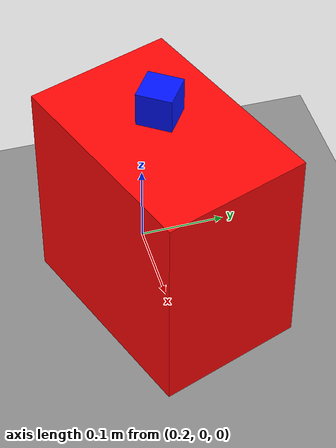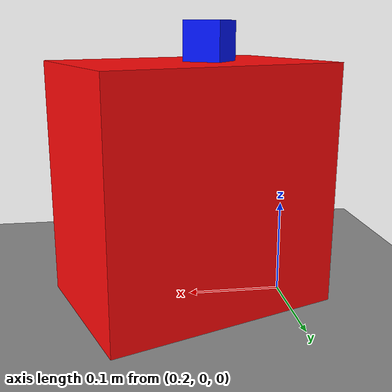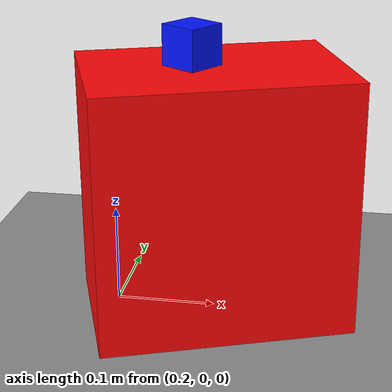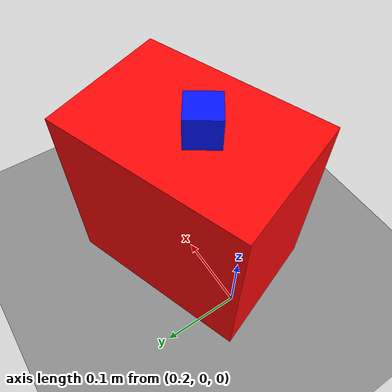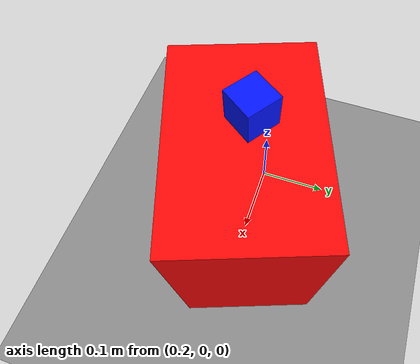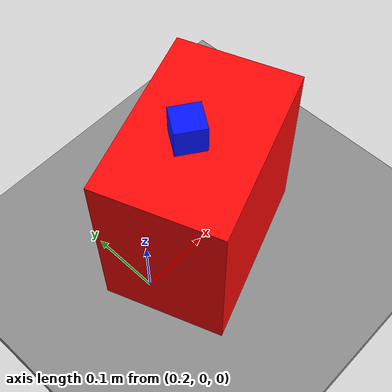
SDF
<?xml version="1.0"?>
<sdf version="1.9">
  <world name="openarm_rgbd_pick_reachable">
    <physics name="1ms" type="ignored">
      <max_step_size>0.001</max_step_size>
      <real_time_factor>1.0</real_time_factor>
    </physics>

    <plugin filename="gz-sim-physics-system"
            name="gz::sim::systems::Physics"/>
    <plugin filename="gz-sim-user-commands-system"
            name="gz::sim::systems::UserCommands"/>
    <plugin filename="gz-sim-scene-broadcaster-system"
            name="gz::sim::systems::SceneBroadcaster"/>
    <plugin filename="gz-sim-sensors-system"
            name="gz::sim::systems::Sensors">
      <render_engine>ogre2</render_engine>
    </plugin>

    <scene>
      <ambient>0.65 0.65 0.65 1</ambient>
      <background>0.15 0.15 0.15 1</background>
    </scene>
    <light type="directional" name="sun">
      <pose>0 0 5 0 0 0</pose>
      <diffuse>0.9 0.9 0.9 1</diffuse>
      <specular>0.2 0.2 0.2 1</specular>
      <direction>-0.4 0.2 -1.0</direction>
      <cast_shadows>true</cast_shadows>
    </light>

    <!-- Functional reachability scene. Geometry exists only in Gazebo; ROS
         receives RGB-D and must estimate every collision/grasp input. -->
    <model name="support_plane">
      <static>true</static>
      <pose>0.30 0 -0.01 0 0 0</pose>
      <link name="link">
        <collision name="collision">
          <geometry><box><size>1.2 1.0 0.02</size></box></geometry>
        </collision>
        <visual name="visual">
          <geometry><box><size>1.2 1.0 0.02</size></box></geometry>
          <material>
            <ambient>0.45 0.45 0.45 1</ambient>
            <diffuse>0.55 0.55 0.55 1</diffuse>
          </material>
        </visual>
      </link>
    </model>

    <model name="red_box">
      <static>true</static>
      <pose>0.300 0 0.1265 0 0 0.35</pose>
      <link name="link">
        <collision name="collision">
          <geometry><box><size>0.25 0.17 0.253</size></box></geometry>
        </collision>
        <visual name="visual">
          <geometry><box><size>0.25 0.17 0.253</size></box></geometry>
          <material>
            <ambient>0.85 0.02 0.02 1</ambient>
            <diffuse>1.0 0.03 0.03 1</diffuse>
            <specular>0.05 0.05 0.05 1</specular>
          </material>
        </visual>
      </link>
    </model>

    <model name="blue_object">
      <static>true</static>
      <!-- Rotate the physical square so one measured edge-aligned pinch yaw is
           reachable. This remains Gazebo scene truth only; no pose is injected
           into perception or MTC. -->
      <pose>0.280 0 0.273 0 0 0.96539816339</pose>
      <link name="link">
        <collision name="collision">
          <geometry><box><size>0.04 0.04 0.04</size></box></geometry>
        </collision>
        <visual name="visual">
          <geometry><box><size>0.04 0.04 0.04</size></box></geometry>
          <material>
            <ambient>0.01 0.05 0.9 1</ambient>
            <diffuse>0.01 0.08 1.0 1</diffuse>
            <specular>0.05 0.05 0.05 1</specular>
          </material>
        </visual>
      </link>
    </model>

    <!-- Keep the camera calibration identical between measured and functional
         scenes. Gazebo camera +X points down; the launch publishes ROS optical TF. -->
    <model name="sim_rgbd_camera">
      <static>true</static>
      <pose>0.431 0 0.85 0 1.57079632679 0</pose>
      <link name="link">
        <sensor name="global_camera" type="rgbd_camera">
          <camera>
            <horizontal_fov>1.21126</horizontal_fov>
            <image>
              <width>640</width>
              <height>480</height>
              <format>R8G8B8</format>
            </image>
            <clip>
              <near>0.10</near>
              <far>2.0</far>
            </clip>
          </camera>
          <always_on>true</always_on>
          <update_rate>15</update_rate>
          <visualize>true</visualize>
          <topic>camera/global_camera</topic>
        </sensor>
      </link>
    </model>
  </world>
</sdf>
